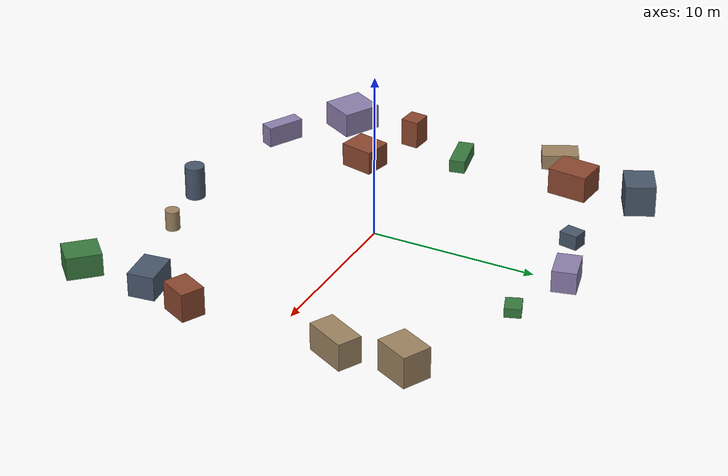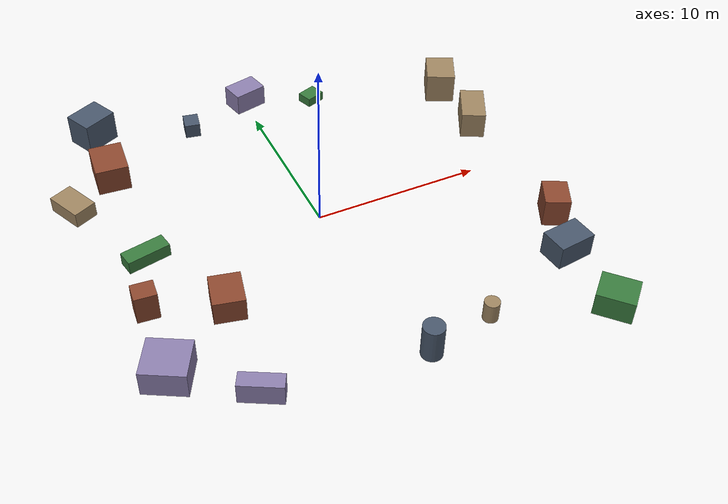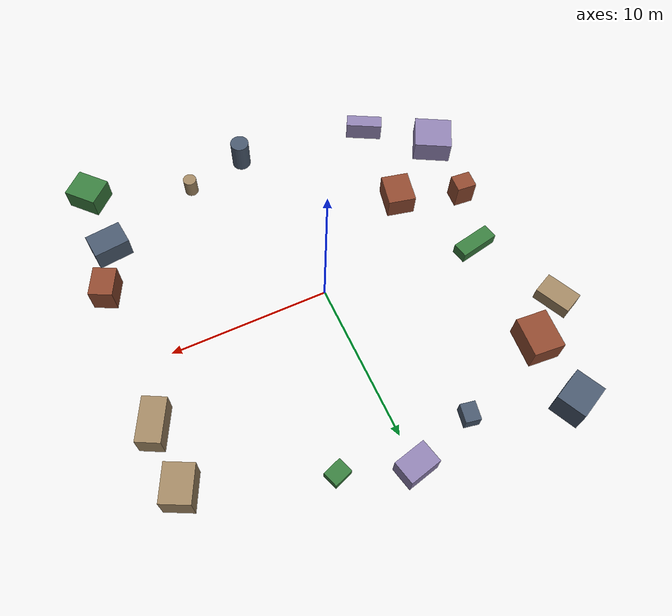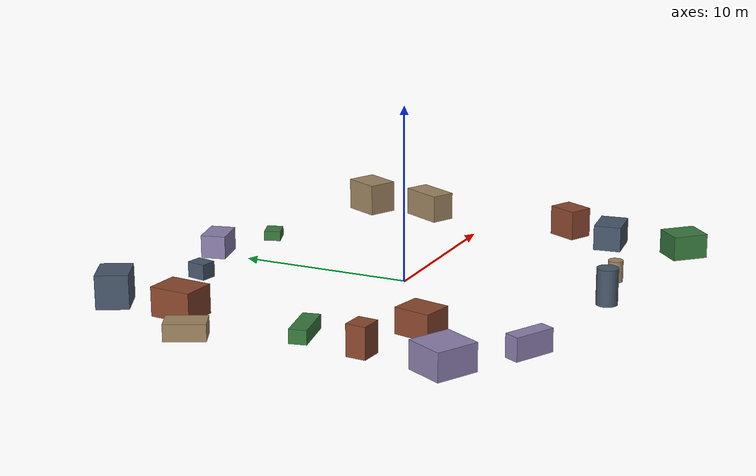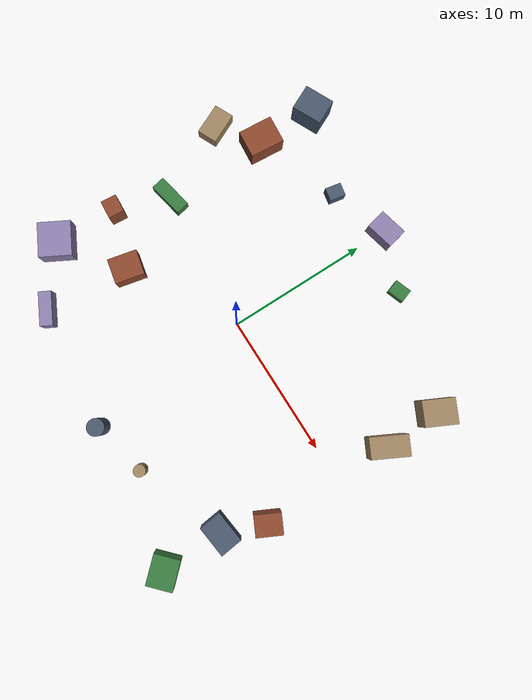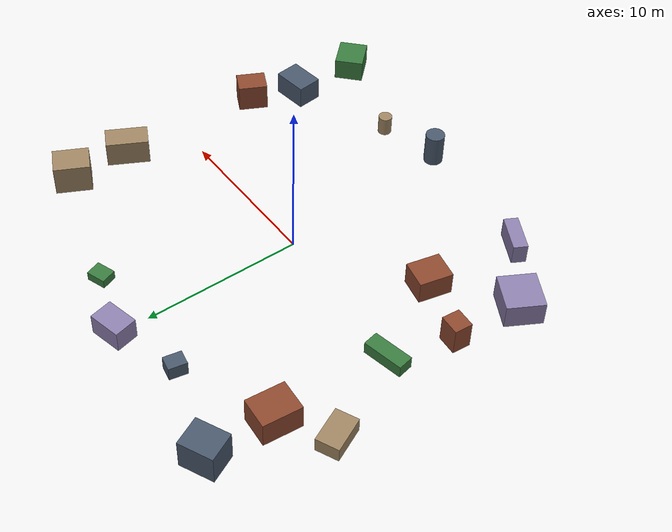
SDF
<sdf version="1.10">
 <world name="robotx_task1_uav_view">
  <gravity>0 0 -9.81</gravity>
  <physics name="physics" type="ode">
   <max_step_size>0.002</max_step_size>
   <real_time_factor>1.0</real_time_factor>
  </physics>
  <scene>
   <ambient>0.20 0.20 0.20 1.0</ambient>
   <background>0.58 0.70 0.88 1.0</background>
   <shadows>true</shadows>
   <grid>false</grid>
  </scene>
  <light name="sun" type="directional">
   <pose>0 0 300 0 0 0</pose>
   <diffuse>0.78 0.78 0.78 1.0</diffuse>
   <specular>0.45 0.45 0.45 1.0</specular>
   <direction>0.20 -0.08 -1.0</direction>
   <attenuation>
    <range>2500</range>
    <constant>0.85</constant>
    <linear>0.001</linear>
    <quadratic>0.00005</quadratic>
   </attenuation>
  </light>
  <plugin filename="gz-sim-physics-system" name="gz::sim::systems::Physics"/>
  <plugin filename="gz-sim-user-commands-system" name="gz::sim::systems::UserCommands"/>
  <plugin filename="gz-sim-scene-broadcaster-system" name="gz::sim::systems::SceneBroadcaster"/>
  <plugin filename="gz-sim-sensors-system" name="gz::sim::systems::Sensors">
   <render_engine>ogre2</render_engine>
  </plugin>
  <model name="scene_clutter_box_000">
   <static>true</static>
   <pose>-12.659 6.267 0.486 0 0 -1.132691</pose>
   <link name="link">
    <visual name="v">
     <geometry><box><size>2.227 1.420 0.932</size></box></geometry>
     <material><ambient>0.45 0.38 0.32 1.0</ambient><diffuse>0.62 0.52 0.38 1.0</diffuse></material>
    </visual>
   </link>
  </model>
  <model name="scene_clutter_box_001">
   <static>true</static>
   <pose>-4.049 10.652 0.470 0 0 -0.185307</pose>
   <link name="link">
    <visual name="v">
     <geometry><box><size>0.925 1.128 0.899</size></box></geometry>
     <material><ambient>0.18 0.22 0.28 1.0</ambient><diffuse>0.28 0.34 0.42 1.0</diffuse></material>
    </visual>
   </link>
  </model>
  <model name="scene_clutter_box_002">
   <static>true</static>
   <pose>-11.154 -2.917 0.884 0 0 -0.079542</pose>
   <link name="link">
    <visual name="v">
     <geometry><box><size>1.249 1.114 1.728</size></box></geometry>
     <material><ambient>0.35 0.16 0.12 1.0</ambient><diffuse>0.55 0.28 0.18 1.0</diffuse></material>
    </visual>
   </link>
  </model>
  <model name="scene_clutter_box_003">
   <static>true</static>
   <pose>4.116 10.599 0.307 0 0 1.919360</pose>
   <link name="link">
    <visual name="v">
     <geometry><box><size>0.968 1.204 0.573</size></box></geometry>
     <material><ambient>0.12 0.30 0.14 1.0</ambient><diffuse>0.22 0.48 0.24 1.0</diffuse></material>
    </visual>
   </link>
  </model>
  <model name="scene_clutter_box_004">
   <static>true</static>
   <pose>0.080 12.030 0.688 0 0 0.234314</pose>
   <link name="link">
    <visual name="v">
     <geometry><box><size>2.039 1.434 1.336</size></box></geometry>
     <material><ambient>0.40 0.35 0.50 1.0</ambient><diffuse>0.55 0.50 0.68 1.0</diffuse></material>
    </visual>
   </link>
  </model>
  <model name="scene_clutter_cyl_005">
   <static>true</static>
   <pose>4.867 -10.654 0.658 0 0 -1.179657</pose>
   <link name="link">
    <visual name="v">
     <geometry><cylinder><radius>0.426</radius><length>1.215</length></cylinder></geometry>
     <material><ambient>0.45 0.38 0.32 1.0</ambient><diffuse>0.62 0.52 0.38 1.0</diffuse></material>
    </visual>
   </link>
  </model>
  <model name="scene_clutter_box_006">
   <static>true</static>
   <pose>11.125 -8.295 0.752 0 0 -3.022740</pose>
   <link name="link">
    <visual name="v">
     <geometry><box><size>2.238 1.595 1.464</size></box></geometry>
     <material><ambient>0.18 0.22 0.28 1.0</ambient><diffuse>0.28 0.34 0.42 1.0</diffuse></material>
    </visual>
   </link>
  </model>
  <model name="scene_clutter_box_007">
   <static>true</static>
   <pose>-7.181 -4.315 0.747 0 0 -0.214154</pose>
   <link name="link">
    <visual name="v">
     <geometry><box><size>1.757 2.068 1.455</size></box></geometry>
     <material><ambient>0.35 0.16 0.12 1.0</ambient><diffuse>0.55 0.28 0.18 1.0</diffuse></material>
    </visual>
   </link>
  </model>
  <model name="scene_clutter_box_008">
   <static>true</static>
   <pose>-10.014 0.879 0.414 0 0 1.770965</pose>
   <link name="link">
    <visual name="v">
     <geometry><box><size>0.970 2.523 0.787</size></box></geometry>
     <material><ambient>0.12 0.30 0.14 1.0</ambient><diffuse>0.22 0.48 0.24 1.0</diffuse></material>
    </visual>
   </link>
  </model>
  <model name="scene_clutter_box_009">
   <static>true</static>
   <pose>-7.700 -10.379 0.656 0 0 2.657496</pose>
   <link name="link">
    <visual name="v">
     <geometry><box><size>2.355 0.878 1.272</size></box></geometry>
     <material><ambient>0.40 0.35 0.50 1.0</ambient><diffuse>0.55 0.50 0.68 1.0</diffuse></material>
    </visual>
   </link>
  </model>
  <model name="scene_clutter_box_010">
   <static>true</static>
   <pose>12.338 4.006 0.843 0 0 -2.044119</pose>
   <link name="link">
    <visual name="v">
     <geometry><box><size>2.649 1.465 1.647</size></box></geometry>
     <material><ambient>0.45 0.38 0.32 1.0</ambient><diffuse>0.62 0.52 0.38 1.0</diffuse></material>
    </visual>
   </link>
  </model>
  <model name="scene_clutter_box_011">
   <static>true</static>
   <pose>-9.838 12.460 0.970 0 0 -1.123734</pose>
   <link name="link">
    <visual name="v">
     <geometry><box><size>1.802 2.131 1.900</size></box></geometry>
     <material><ambient>0.18 0.22 0.28 1.0</ambient><diffuse>0.28 0.34 0.42 1.0</diffuse></material>
    </visual>
   </link>
  </model>
  <model name="scene_clutter_box_012">
   <static>true</static>
   <pose>-9.909 8.294 0.835 0 0 3.059585</pose>
   <link name="link">
    <visual name="v">
     <geometry><box><size>1.927 2.417 1.631</size></box></geometry>
     <material><ambient>0.35 0.16 0.12 1.0</ambient><diffuse>0.55 0.28 0.18 1.0</diffuse></material>
    </visual>
   </link>
  </model>
  <model name="scene_clutter_box_013">
   <static>true</static>
   <pose>11.179 -12.713 0.723 0 0 -2.386712</pose>
   <link name="link">
    <visual name="v">
     <geometry><box><size>1.817 2.089 1.406</size></box></geometry>
     <material><ambient>0.12 0.30 0.14 1.0</ambient><diffuse>0.22 0.48 0.24 1.0</diffuse></material>
    </visual>
   </link>
  </model>
  <model name="scene_clutter_box_014">
   <static>true</static>
   <pose>-11.404 -7.392 0.783 0 0 1.076883</pose>
   <link name="link">
    <visual name="v">
     <geometry><box><size>2.282 2.413 1.527</size></box></geometry>
     <material><ambient>0.40 0.35 0.50 1.0</ambient><diffuse>0.55 0.50 0.68 1.0</diffuse></material>
    </visual>
   </link>
  </model>
  <model name="scene_clutter_box_015">
   <static>true</static>
   <pose>12.197 7.971 0.968 0 0 1.114253</pose>
   <link name="link">
    <visual name="v">
     <geometry><box><size>2.238 1.772 1.897</size></box></geometry>
     <material><ambient>0.45 0.38 0.32 1.0</ambient><diffuse>0.62 0.52 0.38 1.0</diffuse></material>
    </visual>
   </link>
  </model>
  <model name="scene_clutter_cyl_016">
   <static>true</static>
   <pose>0.976 -11.465 1.069 0 0 -0.540326</pose>
   <link name="link">
    <visual name="v">
     <geometry><cylinder><radius>0.594</radius><length>2.038</length></cylinder></geometry>
     <material><ambient>0.18 0.22 0.28 1.0</ambient><diffuse>0.28 0.34 0.42 1.0</diffuse></material>
    </visual>
   </link>
  </model>
  <model name="scene_clutter_box_017">
   <static>true</static>
   <pose>12.245 -5.355 0.888 0 0 -0.458796</pose>
   <link name="link">
    <visual name="v">
     <geometry><box><size>1.452 1.836 1.737</size></box></geometry>
     <material><ambient>0.35 0.16 0.12 1.0</ambient><diffuse>0.55 0.28 0.18 1.0</diffuse></material>
    </visual>
   </link>
  </model>
  <model name="uav_dataset_camera">
   <static>false</static>
   <pose>0 0 26 0 0 0</pose>
   <plugin filename="librobotx_overhead_motion_plugin.dylib" name="robotx::OverheadMotionPlugin">
    <radius_x_m>10.75087</radius_x_m>
    <radius_y_m>9.61771</radius_y_m>
    <angular_speed_rad_s>0.062862</angular_speed_rad_s>
    <phase_rad>1.694428</phase_rad>
    <z_wobble_m>0.02233</z_wobble_m>
    <z_wobble_hz>0.05836</z_wobble_hz>
    <z_wobble_phase_rad>1.037794</z_wobble_phase_rad>
   </plugin>
   <link name="camera_link">
    <gravity>false</gravity>
    <sensor name="top_down_rgb" type="camera">
     <always_on>true</always_on>
     <update_rate>20</update_rate>
     <pose>0 0 0 0 1.57079632679 0</pose>
     <camera>
      <horizontal_fov>1.05</horizontal_fov>
      <image><width>1920</width><height>1080</height><format>R8G8B8</format></image>
      <clip><near>0.2</near><far>600</far></clip>
     </camera>
     <topic>/robotx/uav/camera/image_raw</topic>
     <visualize>true</visualize>
    </sensor>
   </link>
  </model>
 </world>
</sdf>
